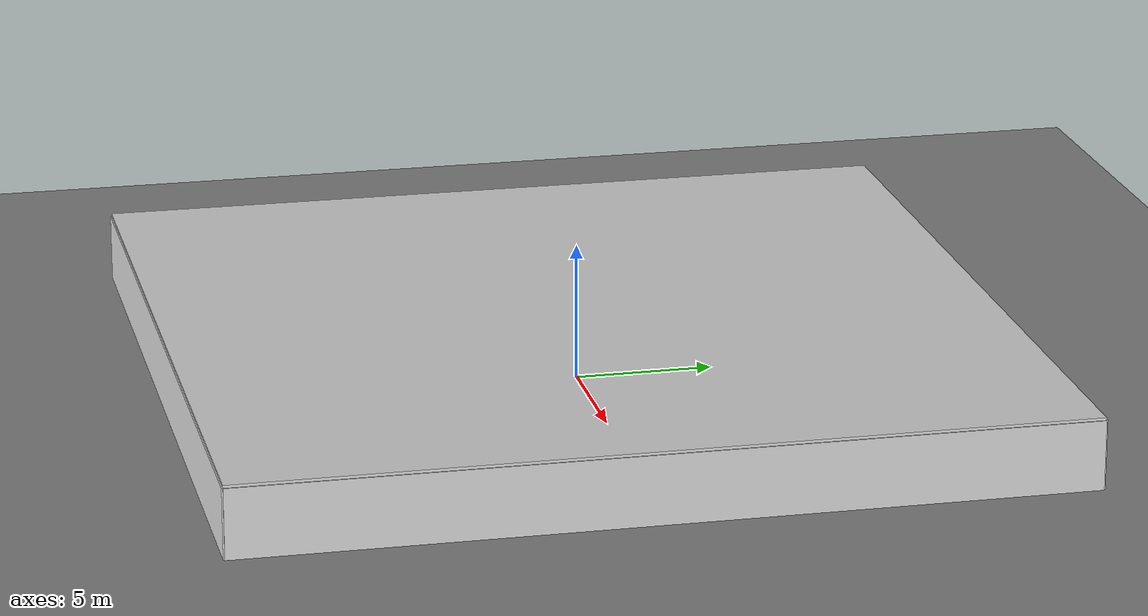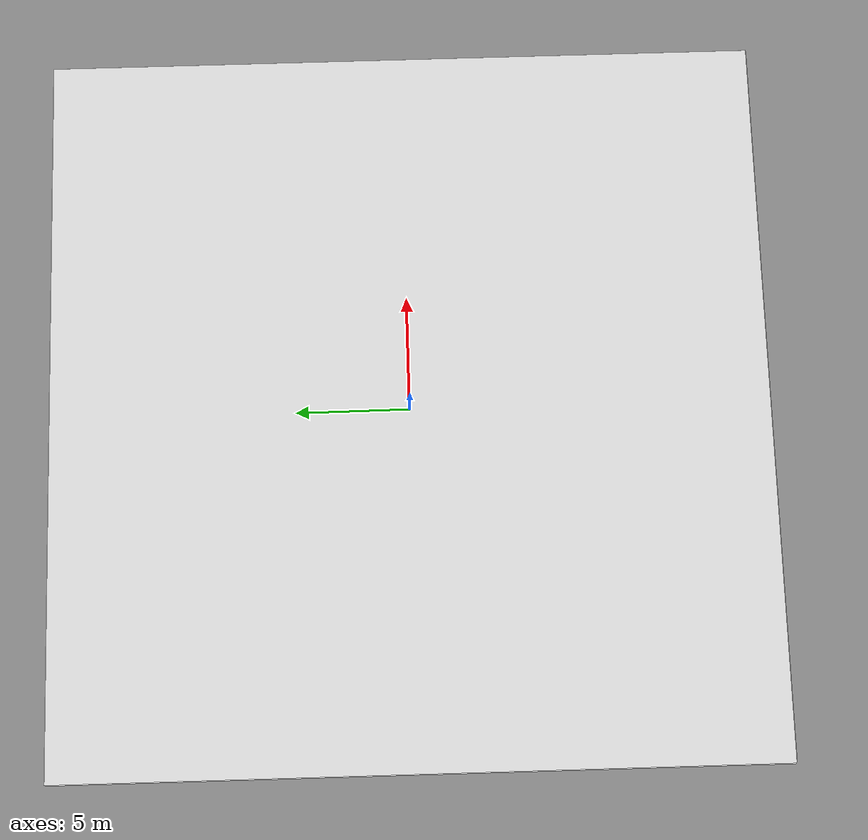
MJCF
<mujoco model="scene">

  <visual>
    <headlight diffuse="0.6 0.6 0.6" ambient="0.3 0.3 0.3" specular="0 0 0"/>
    <rgba haze="0.871 0.616 0.4 0.5"/>
    <global azimuth="-130" elevation="-20"/>
  </visual>

  <asset>
    <texture builtin="gradient" height="100" rgb1="0.9 0.9 0.9" rgb2="0.55 0.25 0.0" type="skybox" width="100"/>
    <include file="../../room/objects/materials.xml"/>
  </asset>

    <worldbody>
        <geom name="floor" friction="1 .1 .1" pos="0 0 0" size="0 0 0.125" type="plane" material="mat_floor" condim="3" conaffinity="1" contype="1" group="2"/>
        <light cutoff="1000" diffuse="1.5 1.5 1.5" dir="-0 0 -1.3" directional="true" exponent="10" pos="0 0 10.3" specular=".1 .1 .1" castshadow="false"/>

        <geom name="wall_negx" type="box" pos="-15.0 0.0 1.25" size="0.05 15.0 1.25" material="mat_wall"/>
        <geom name="wall_posx" type="box" pos=" 15.0 0.0 1.25" size="0.05 15.0 1.25" material="mat_wall"/>
        <geom name="wall_negy" type="box" pos="0.0 -15.0 1.25" size="15.0 0.05 1.25" material="mat_wall"/>
        <geom name="wall_posy" type="box" pos="0.0  15.0 1.25" size="15.0 0.05 1.25" material="mat_wall"/>

        <geom name="ceiling" type="box"
          pos="0 0 2.55"
          size="15.0 15.0 0.05"
          material="mat_wall"
          contype="1" conaffinity="1"
        />

        <!-- SCENARIO: table_09 -->
        <!-- TARGET_BODY_NAME: table_target -->
        <!-- LAYOUT: target=table, distance=far, side=right, difficulty=hard -->

        <!-- TARGET: table -->
        <body name="table_target" pos="6.1784 -1.8453 0.0" euler="0 0 0.9534">
          <include file="../../room/objects/table.xml"/>
        </body>

        <!-- OBSTRUCTOR: cardboard_box -->
        <body name="cardboard_box_obstructor1" pos="3.3924 -1.1163 0.0" euler="0 0 -0.0203">
          <include file="../../room/objects/cardboard_box.xml"/>
        </body>

        <!-- DISTRACTOR: chair -->
        <body name="chair_distractor1" pos="2.2503 0.8546 0.0" euler="0 0 0.4665">
          <include file="../../room/objects/chair.xml"/>
        </body>
        <!-- DISTRACTOR: couch -->
        <body name="couch_distractor2" pos="5.3303 1.5146 0.0" euler="0 0 1.0701">
          <include file="../../room/objects/couch.xml"/>
        </body>
    </worldbody>
</mujoco>

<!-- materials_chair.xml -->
<mujoco>
  <texture name="tex_wood_chair" type="2d" file="oak_veneer_01_diff_2k.png"/>
  <material name="mat_wood_chair"
            texture="tex_wood_chair"
            texrepeat="1.2 1.2"
            texuniform="true"
            rgba="1 1 1 1"
            specular="0.22"
            shininess="0.35"
            reflectance="0.04"/>
</mujoco>

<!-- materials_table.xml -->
<mujoco>
  <texture name="tex_wood_table" type="2d" file="wood_table_001_diff_2k.png"/>
  <material name="mat_wood_table"
            texture="tex_wood_table"
            texrepeat="1.2 1.2"
            texuniform="true"
            rgba="1 1 1 1"
            specular="0.22"
            shininess="0.35"
            reflectance="0.04"/>
</mujoco>

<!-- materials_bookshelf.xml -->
<mujoco>
  <texture name="tex_bookshelf_wood"
           type="2d"
           file="oak_veneer_01_diff_2k.png"/>

  <material name="mat_wood_bookshelf"
            texture="tex_bookshelf_wood"
            texrepeat="1.2 1.2"
            texuniform="true"
            rgba="1 1 1 1"
            specular="0.22"
            shininess="0.35"
            reflectance="0.04"/>
</mujoco>

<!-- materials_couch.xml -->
<mujoco>
  <texture name="tex_wood_couch" type="2d" file="wood_table_001_diff_2k.png"/>
  <material name="mat_wood_couch"
            texture="tex_wood_couch"
            texrepeat="1.2 1.2"
            texuniform="true"
            rgba="1 1 1 1"
            specular="0.22"
            shininess="0.35"
            reflectance="0.04"/>

  <texture name="tex_fabric" type="2d" file="rough_linen_diff_2k.png"/>
  <material name="mat_fabric"
            texture="tex_fabric"
            texrepeat="1.2 1.2"
            texuniform="true"
            rgba="1 1 1 1"
            specular="0.10"
            shininess="0.08"
            reflectance="0.01"/>
</mujoco>

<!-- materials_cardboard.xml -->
<mujoco>
  <texture name="tex_cardboard" type="2d" file="cardboard.png"/>
  <material name="mat_cardboard"
            texture="tex_cardboard"
            texrepeat="1.2 1.2"
            texuniform="true"
            rgba="1 1 1 1"
            specular="0.10"
            shininess="0.08"
            reflectance="0.01"/>
</mujoco>

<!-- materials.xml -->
<mujoco>
  <material name="mat_wall" rgba="0.85 0.85 0.85 1"/>
  <include file="materials_chair.xml"/>

  <include file="materials_table.xml"/>

  <include file="materials_bookshelf.xml"/>
  <material name="mat_book_red" rgba="0.70 0.18 0.16 1"/>
  <material name="mat_book_blue" rgba="0.16 0.31 0.62 1"/>
  <material name="mat_book_green" rgba="0.22 0.45 0.24 1"/>
  <material name="mat_book_yellow" rgba="0.78 0.66 0.22 1"/>
  <material name="mat_book_dark" rgba="0.20 0.18 0.17 1"/>

  <include file="materials_couch.xml"/>
  <include file="materials_cardboard.xml"/>

  <texture name="tex_metal" type="2d" file="metal.png"/>
  <material name="mat_metal" texture="tex_metal" texrepeat="2 2" reflectance="0.3"/>
  <material name="mat_trash_can_dark_green"
            texture="tex_metal"
            texrepeat="2 2"
            rgba="0.10 0.18 0.12 1"
            specular="0.18"
            shininess="0.20"
            reflectance="0.02"/>

  <texture name="tex_floor" type="2d" builtin="checker" width="512" height="512"
           rgb1="0.55 0.55 0.55" rgb2="0.50 0.50 0.50"/>
  <material name="mat_floor" texture="tex_floor" texrepeat="4 4" reflectance="0.00"/>

</mujoco>

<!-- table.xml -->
<mujoco>
  <body>
    <!-- tabletop -->
    <geom name="table_top" type="box"
          pos="0 0 0.595" size="0.62 0.42 0.035"
          material="mat_wood_table"/>
    <geom name="table_helper_front" type="box"
          pos="0 0.295 0.275" size="0.450 0.012 0.275"
          rgba="0 0 0 0"/>
    <geom name="table_helper_back" type="box"
          pos="0 -0.295 0.275" size="0.450 0.012 0.275"
          rgba="0 0 0 0"/>
    <geom name="table_helper_left" type="box"
          pos="-0.515 0 0.275" size="0.012 0.245 0.275"
          rgba="0 0 0 0"/>
    <geom name="table_helper_right" type="box"
          pos="0.515 0 0.275" size="0.012 0.245 0.275"
          rgba="0 0 0 0"/>
    <geom name="table_top_bevel_front" type="box"
          pos="0 0.395 0.555" size="0.58 0.012 0.012"
          material="mat_wood_table"/>
    <geom name="table_top_bevel_back" type="box"
          pos="0 -0.395 0.555" size="0.58 0.012 0.012"
          material="mat_wood_table"/>
    <geom name="table_top_bevel_left" type="box"
          pos="-0.595 0 0.555" size="0.012 0.36 0.012"
          material="mat_wood_table"/>
    <geom name="table_top_bevel_right" type="box"
          pos="0.595 0 0.555" size="0.012 0.36 0.012"
          material="mat_wood_table"/>

    <!-- apron -->
    <geom name="table_apron_front" type="box"
          pos="0 0.335 0.515" size="0.53 0.025 0.045"
          material="mat_wood_table"/>
    <geom name="table_apron_back" type="box"
          pos="0 -0.335 0.515" size="0.53 0.025 0.045"
          material="mat_wood_table"/>
    <geom name="table_apron_left" type="box"
          pos="-0.535 0 0.515" size="0.025 0.29 0.045"
          material="mat_wood_table"/>
    <geom name="table_apron_right" type="box"
          pos="0.535 0 0.515" size="0.025 0.29 0.045"
          material="mat_wood_table"/>

    <!-- legs -->
    <geom name="table_leg_fl" type="box"
          pos="0.515 0.295 0.255" size="0.032 0.032 0.255"
          material="mat_wood_table"/>
    <geom name="table_leg_fr" type="box"
          pos="0.515 -0.295 0.255" size="0.032 0.032 0.255"
          material="mat_wood_table"/>
    <geom name="table_leg_rl" type="box"
          pos="-0.515 0.295 0.255" size="0.032 0.032 0.255"
          material="mat_wood_table"/>
    <geom name="table_leg_rr" type="box"
          pos="-0.515 -0.295 0.255" size="0.032 0.032 0.255"
          material="mat_wood_table"/>

    <!-- lower stretchers -->
    <geom name="table_stretcher_left" type="box"
          pos="-0.515 0 0.105" size="0.015 0.295 0.015"
          material="mat_wood_table"/>
    <geom name="table_stretcher_right" type="box"
          pos="0.515 0 0.105" size="0.015 0.295 0.015"
          material="mat_wood_table"/>
    <geom name="table_stretcher_front" type="box"
          pos="0 0.295 0.120" size="0.515 0.015 0.015"
          material="mat_wood_table"/>
    <geom name="table_stretcher_back" type="box"
          pos="0 -0.295 0.120" size="0.515 0.015 0.015"
          material="mat_wood_table"/>

  </body>
</mujoco>

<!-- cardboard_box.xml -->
<mujoco>
  <body>
    <geom name="cardboard_box_base" type="box" pos="0 0 0.015" size="0.20 0.20 0.015" material="mat_cardboard"/>
    <geom name="cardboard_box_wall_front" type="box" pos="0  0.185 0.155" size="0.20 0.015 0.125" material="mat_cardboard"/>
    <geom name="cardboard_box_wall_back" type="box" pos="0 -0.185 0.155" size="0.20 0.015 0.125" material="mat_cardboard"/>
    <geom name="cardboard_box_wall_left" type="box" pos="-0.185 0 0.155" size="0.015 0.20 0.125" material="mat_cardboard"/>
    <geom name="cardboard_box_wall_right" type="box" pos=" 0.185 0 0.155" size="0.015 0.20 0.125" material="mat_cardboard"/>
  </body>
</mujoco>

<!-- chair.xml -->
<mujoco>
  <body>
    <!-- seat frame and seat board -->
    <geom name="chair_seat_top" type="box"
          pos="0 0 0.43" size="0.24 0.22 0.018"
          material="mat_wood_chair"/>
    <geom name="chair_helper_front" type="box"
          pos="0 0.185 0.185" size="0.187 0.012 0.185"
          rgba="0 0 0 0"/>
    <geom name="chair_helper_back" type="box"
          pos="0 -0.185 0.185" size="0.187 0.012 0.185"
          rgba="0 0 0 0"/>
    <geom name="chair_helper_left" type="box"
          pos="-0.205 0 0.185" size="0.012 0.167 0.185"
          rgba="0 0 0 0"/>
    <geom name="chair_helper_right" type="box"
          pos="0.205 0 0.185" size="0.012 0.167 0.185"
          rgba="0 0 0 0"/>
    <geom name="chair_seat_apron_front" type="box"
          pos="0 0.195 0.385" size="0.21 0.015 0.028"
          material="mat_wood_chair"/>
    <geom name="chair_seat_apron_back" type="box"
          pos="0 -0.195 0.385" size="0.21 0.015 0.028"
          material="mat_wood_chair"/>
    <geom name="chair_seat_apron_left" type="box"
          pos="-0.225 0 0.385" size="0.015 0.18 0.028"
          material="mat_wood_chair"/>
    <geom name="chair_seat_apron_right" type="box"
          pos="0.225 0 0.385" size="0.015 0.18 0.028"
          material="mat_wood_chair"/>

    <!-- front legs -->
    <geom name="chair_leg_fl" type="box"
          pos="-0.205 0.185 0.195" size="0.018 0.018 0.195"
          material="mat_wood_chair"/>
    <geom name="chair_leg_fr" type="box"
          pos="0.205 0.185 0.195" size="0.018 0.018 0.195"
          material="mat_wood_chair"/>

    <!-- rear legs extend upward into the backrest posts -->
    <geom name="chair_leg_rl" type="box"
          pos="-0.205 -0.185 0.365" size="0.019 0.019 0.535"
          material="mat_wood_chair"/>
    <geom name="chair_leg_rr" type="box"
          pos="0.205 -0.185 0.365" size="0.019 0.019 0.535"
          material="mat_wood_chair"/>

    <!-- lower stretchers -->
    <geom name="chair_stretcher_front" type="box"
          pos="0 0.185 0.165" size="0.187 0.012 0.012"
          material="mat_wood_chair"/>
    <geom name="chair_stretcher_back" type="box"
          pos="0 -0.185 0.165" size="0.187 0.012 0.012"
          material="mat_wood_chair"/>
    <geom name="chair_stretcher_left" type="box"
          pos="-0.205 0 0.150" size="0.012 0.185 0.012"
          material="mat_wood_chair"/>
    <geom name="chair_stretcher_right" type="box"
          pos="0.205 0 0.150" size="0.012 0.185 0.012"
          material="mat_wood_chair"/>

    <!-- backrest frame -->
    <geom name="chair_back_top" type="box"
          pos="0 -0.185 0.865" size="0.18 0.016 0.022"
          material="mat_wood_chair"/>
    <geom name="chair_back_mid" type="box"
          pos="0 -0.178 0.710" size="0.155 0.013 0.018"
          material="mat_wood_chair"/>

    <!-- vertical back slats -->
    <geom name="chair_back_slat_l" type="box"
          pos="-0.085 -0.175 0.565" size="0.014 0.010 0.160"
          material="mat_wood_chair"/>
    <geom name="chair_back_slat_c" type="box"
          pos="0 -0.175 0.565" size="0.014 0.010 0.160"
          material="mat_wood_chair"/>
    <geom name="chair_back_slat_r" type="box"
          pos="0.085 -0.175 0.565" size="0.014 0.010 0.160"
          material="mat_wood_chair"/>
  </body>
</mujoco>

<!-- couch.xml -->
<mujoco>
<body>
  <!-- legs -->
  <geom name="couch_leg_fl" type="box"
        pos="-0.50 0.26 0.04" size="0.03 0.03 0.04"
        material="mat_wood_couch"/>
  <geom name="couch_leg_fr" type="box"
        pos="0.50 0.26 0.04" size="0.03 0.03 0.04"
        material="mat_wood_couch"/>
  <geom name="couch_leg_rl" type="box"
        pos="-0.50 -0.26 0.04" size="0.03 0.03 0.04"
        material="mat_wood_couch"/>
  <geom name="couch_leg_rr" type="box"
        pos="0.50 -0.26 0.04" size="0.03 0.03 0.04"
        material="mat_wood_couch"/>

  <!-- soft seat base -->
  <geom name="couch_seat_base" type="box"
        pos="0 0 0.16" size="0.54 0.27 0.08"
        material="mat_fabric"/>
  <geom name="couch_seat_front_roll" type="capsule"
        fromto="-0.48 0.24 0.195 0.48 0.24 0.195"
        size="0.055"
        material="mat_fabric"/>

  <!-- seat cushions -->
  <geom name="couch_seat_left" type="ellipsoid"
        pos="-0.22 0.02 0.255" size="0.17 0.21 0.065"
        material="mat_fabric"/>
  <geom name="couch_seat_mid" type="ellipsoid"
        pos="0.00 0.02 0.255" size="0.15 0.21 0.065"
        material="mat_fabric"/>
  <geom name="couch_seat_right" type="ellipsoid"
        pos="0.22 0.02 0.255" size="0.17 0.21 0.065"
        material="mat_fabric"/>

  <!-- back cushions -->
  <geom name="couch_back_core" type="box"
        pos="0 -0.160 0.37" size="0.53 0.105 0.16"
        material="mat_fabric"/>
  <geom name="couch_back_top_roll" type="capsule"
        fromto="-0.48 -0.145 0.52 0.48 -0.145 0.52"
        size="0.060"
        material="mat_fabric"/>
  <geom name="couch_back_left" type="ellipsoid"
        pos="-0.22 -0.095 0.39" size="0.16 0.100 0.15"
        material="mat_fabric"/>
  <geom name="couch_back_mid" type="ellipsoid"
        pos="0.00 -0.095 0.39" size="0.14 0.100 0.15"
        material="mat_fabric"/>
  <geom name="couch_back_right" type="ellipsoid"
        pos="0.22 -0.095 0.39" size="0.16 0.100 0.15"
        material="mat_fabric"/>

  <!-- softer armrests -->
  <geom name="couch_arm_left_core" type="box"
        pos="-0.49 0.02 0.34" size="0.055 0.24 0.15"
        material="mat_fabric"/>
  <geom name="couch_arm_right_core" type="box"
        pos="0.49 0.02 0.34" size="0.055 0.24 0.15"
        material="mat_fabric"/>
  <geom name="couch_arm_left_top" type="capsule"
        fromto="-0.49 -0.19 0.49 -0.49 0.18 0.49"
        size="0.050"
        material="mat_fabric"/>
  <geom name="couch_arm_right_top" type="capsule"
        fromto="0.49 -0.19 0.49 0.49 0.18 0.49"
        size="0.050"
        material="mat_fabric"/>
</body>
</mujoco>
